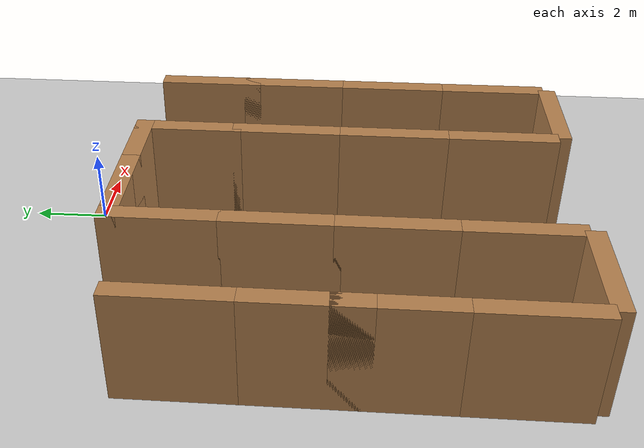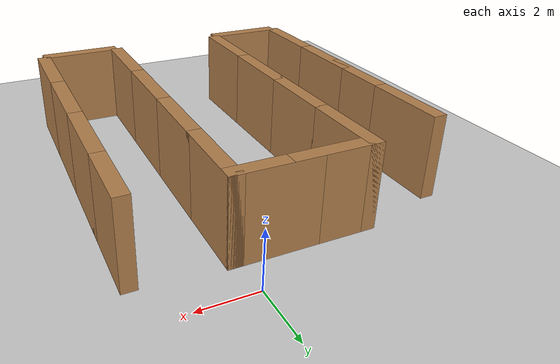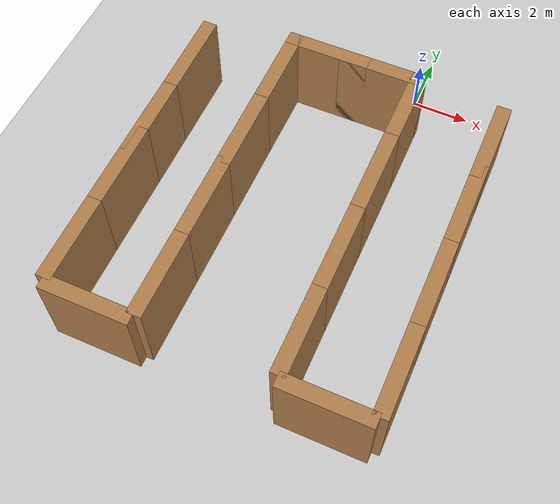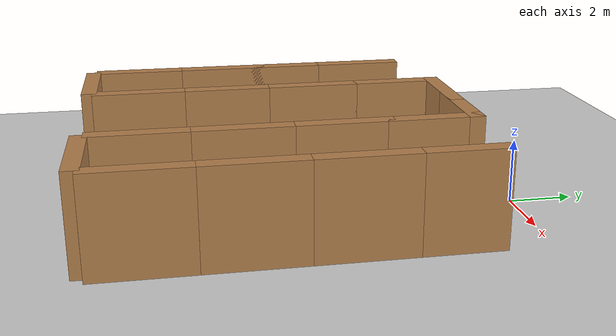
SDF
<sdf version="1.10">
 <world name="h_map_world_very_large">
  <model name="ground_plane">
   <static>true</static>
   <link name="link">
    <collision name="collision">
     <geometry><plane><normal>0 0 1</normal><size>100 100</size></plane></geometry>
     <surface><friction><ode><mu>50</mu></ode></friction></surface>
    </collision>
    <visual name="visual">
     <geometry><plane><normal>0 0 1</normal><size>100 100</size></plane></geometry>
     <material>
      <ambient>0.800000012 0.800000012 0.800000012 1</ambient>
      <diffuse>0.800000012 0.800000012 0.800000012 1</diffuse>
      <specular>0.800000012 0.800000012 0.800000012 1</specular>
     </material>
    </visual>
    <inertial>
     <mass>1</mass>
     <inertia><ixx>1</ixx><ixy>0</ixy><ixz>0</ixz><iyy>1</iyy><iyz>0</iyz><izz>1</izz></inertia>
    </inertial>
   </link>
  </model>
  <model name="left_west_-3">
   <static>true</static>
   <link name="chassis">
    <pose>0 0 1.5 0 0 0</pose>
    <collision name="collision"><geometry><box><size>3 0.5 3</size></box></geometry></collision>
    <visual name="visual">
     <geometry>
      <mesh><uri>model://brick_box_3x1x3/meshes/simple_box.dae</uri><scale>3 0.5 3</scale></mesh>
     </geometry>
     <material>
      <diffuse>1 1 1 1</diffuse>
      <script><uri>file://media/materials/scripts/gazebo.material</uri><name>Gazebo/Wood</name></script>
      <pbr><metal><albedo_map>model://brick_box_3x1x3/materials/textures/simple_box.png</albedo_map></metal></pbr>
     </material>
    </visual>
   </link>
   <pose>-7.2500 -11.4000 0 0 0 -1.5707963268</pose>
  </model>
  <model name="left_west_-2">
   <static>true</static>
   <link name="chassis">
    <pose>0 0 1.5 0 0 0</pose>
    <collision name="collision"><geometry><box><size>3 0.5 3</size></box></geometry></collision>
    <visual name="visual">
     <geometry>
      <mesh><uri>model://brick_box_3x1x3/meshes/simple_box.dae</uri><scale>3 0.5 3</scale></mesh>
     </geometry>
     <material>
      <diffuse>1 1 1 1</diffuse>
      <script><uri>file://media/materials/scripts/gazebo.material</uri><name>Gazebo/Wood</name></script>
      <pbr><metal><albedo_map>model://brick_box_3x1x3/materials/textures/simple_box.png</albedo_map></metal></pbr>
     </material>
    </visual>
   </link>
   <pose>-7.2500 -8.4000 0 0 0 -1.5707963268</pose>
  </model>
  <model name="left_west_-1">
   <static>true</static>
   <link name="chassis">
    <pose>0 0 1.5 0 0 0</pose>
    <collision name="collision"><geometry><box><size>3 0.5 3</size></box></geometry></collision>
    <visual name="visual">
     <geometry>
      <mesh><uri>model://brick_box_3x1x3/meshes/simple_box.dae</uri><scale>3 0.5 3</scale></mesh>
     </geometry>
     <material>
      <diffuse>1 1 1 1</diffuse>
      <script><uri>file://media/materials/scripts/gazebo.material</uri><name>Gazebo/Wood</name></script>
      <pbr><metal><albedo_map>model://brick_box_3x1x3/materials/textures/simple_box.png</albedo_map></metal></pbr>
     </material>
    </visual>
   </link>
   <pose>-7.2500 -6.4000 0 0 0 -1.5707963268</pose>
  </model>
  <model name="left_west_0">
   <static>true</static>
   <link name="chassis">
    <pose>0 0 1.5 0 0 0</pose>
    <collision name="collision"><geometry><box><size>3 0.5 3</size></box></geometry></collision>
    <visual name="visual">
     <geometry>
      <mesh><uri>model://brick_box_3x1x3/meshes/simple_box.dae</uri><scale>3 0.5 3</scale></mesh>
     </geometry>
     <material>
      <diffuse>1 1 1 1</diffuse>
      <script><uri>file://media/materials/scripts/gazebo.material</uri><name>Gazebo/Wood</name></script>
      <pbr><metal><albedo_map>model://brick_box_3x1x3/materials/textures/simple_box.png</albedo_map></metal></pbr>
     </material>
    </visual>
   </link>
   <pose>-7.2500 -3.4000 0 0 0 -1.5707963268</pose>
  </model>
  <model name="left_south_0">
   <static>true</static>
   <link name="chassis">
    <pose>0 0 1.5 0 0 0</pose>
    <collision name="collision"><geometry><box><size>3 0.5 3</size></box></geometry></collision>
    <visual name="visual">
     <geometry>
      <mesh><uri>model://brick_box_3x1x3/meshes/simple_box.dae</uri><scale>3 0.5 3</scale></mesh>
     </geometry>
     <material>
      <diffuse>1 1 1 1</diffuse>
      <script><uri>file://media/materials/scripts/gazebo.material</uri><name>Gazebo/Wood</name></script>
      <pbr><metal><albedo_map>model://brick_box_3x1x3/materials/textures/simple_box.png</albedo_map></metal></pbr>
     </material>
    </visual>
   </link>
   <pose>-5.7500 -13.00 0 0 0 0.0000000000</pose>
  </model>
  <model name="right_south_0">
   <static>true</static>
   <link name="chassis">
    <pose>0 0 1.5 0 0 0</pose>
    <collision name="collision"><geometry><box><size>3 0.5 3</size></box></geometry></collision>
    <visual name="visual">
     <geometry>
      <mesh><uri>model://brick_box_3x1x3/meshes/simple_box.dae</uri><scale>3 0.5 3</scale></mesh>
     </geometry>
     <material>
      <diffuse>1 1 1 1</diffuse>
      <script><uri>file://media/materials/scripts/gazebo.material</uri><name>Gazebo/Wood</name></script>
      <pbr><metal><albedo_map>model://brick_box_3x1x3/materials/textures/simple_box.png</albedo_map></metal></pbr>
     </material>
    </visual>
   </link>
   <pose>1.7500 -13.000 0 0 0 0.0000000000</pose>
  </model>
  <model name="right_east_-2">
   <static>true</static>
   <link name="chassis">
    <pose>0 0 1.5 0 0 0</pose>
    <collision name="collision"><geometry><box><size>3 0.5 3</size></box></geometry></collision>
    <visual name="visual">
     <geometry>
      <mesh><uri>model://brick_box_3x1x3/meshes/simple_box.dae</uri><scale>3 0.5 3</scale></mesh>
     </geometry>
     <material>
      <diffuse>1 1 1 1</diffuse>
      <script><uri>file://media/materials/scripts/gazebo.material</uri><name>Gazebo/Wood</name></script>
      <pbr><metal><albedo_map>model://brick_box_3x1x3/materials/textures/simple_box.png</albedo_map></metal></pbr>
     </material>
    </visual>
   </link>
   <pose>3.2500 -11.4000 0 0 0 -1.5707963268</pose>
  </model>
  <model name="right_east_-1">
   <static>true</static>
   <link name="chassis">
    <pose>0 0 1.5 0 0 0</pose>
    <collision name="collision"><geometry><box><size>3 0.5 3</size></box></geometry></collision>
    <visual name="visual">
     <geometry>
      <mesh><uri>model://brick_box_3x1x3/meshes/simple_box.dae</uri><scale>3 0.5 3</scale></mesh>
     </geometry>
     <material>
      <diffuse>1 1 1 1</diffuse>
      <script><uri>file://media/materials/scripts/gazebo.material</uri><name>Gazebo/Wood</name></script>
      <pbr><metal><albedo_map>model://brick_box_3x1x3/materials/textures/simple_box.png</albedo_map></metal></pbr>
     </material>
    </visual>
   </link>
   <pose>3.2500 -8.4000 0 0 0 -1.5707963268</pose>
  </model>
  <model name="right_east_0">
   <static>true</static>
   <link name="chassis">
    <pose>0 0 1.5 0 0 0</pose>
    <collision name="collision"><geometry><box><size>3 0.5 3</size></box></geometry></collision>
    <visual name="visual">
     <geometry>
      <mesh><uri>model://brick_box_3x1x3/meshes/simple_box.dae</uri><scale>3 0.5 3</scale></mesh>
     </geometry>
     <material>
      <diffuse>1 1 1 1</diffuse>
      <script><uri>file://media/materials/scripts/gazebo.material</uri><name>Gazebo/Wood</name></script>
      <pbr><metal><albedo_map>model://brick_box_3x1x3/materials/textures/simple_box.png</albedo_map></metal></pbr>
     </material>
    </visual>
   </link>
   <pose>3.2500 -5.4000 0 0 0 -1.5707963268</pose>
  </model>
  <model name="right_east_3">
   <static>true</static>
   <link name="chassis">
    <pose>0 0 1.5 0 0 0</pose>
    <collision name="collision"><geometry><box><size>3 0.5 3</size></box></geometry></collision>
    <visual name="visual">
     <geometry>
      <mesh><uri>model://brick_box_3x1x3/meshes/simple_box.dae</uri><scale>3 0.5 3</scale></mesh>
     </geometry>
     <material>
      <diffuse>1 1 1 1</diffuse>
      <script><uri>file://media/materials/scripts/gazebo.material</uri><name>Gazebo/Wood</name></script>
      <pbr><metal><albedo_map>model://brick_box_3x1x3/materials/textures/simple_box.png</albedo_map></metal></pbr>
     </material>
    </visual>
   </link>
   <pose>3.2500 -2.9000 0 0 0 -1.5707963268</pose>
  </model>
  <model name="left_east_lower_3">
   <static>true</static>
   <link name="chassis">
    <pose>0 0 1.5 0 0 0</pose>
    <collision name="collision"><geometry><box><size>3 0.5 3</size></box></geometry></collision>
    <visual name="visual">
     <geometry>
      <mesh><uri>model://brick_box_3x1x3/meshes/simple_box.dae</uri><scale>3 0.5 3</scale></mesh>
     </geometry>
     <material>
      <diffuse>1 1 1 1</diffuse>
      <script><uri>file://media/materials/scripts/gazebo.material</uri><name>Gazebo/Wood</name></script>
      <pbr><metal><albedo_map>model://brick_box_3x1x3/materials/textures/simple_box.png</albedo_map></metal></pbr>
     </material>
    </visual>
   </link>
   <pose>-4.2500 -11.4000 0 0 0 -1.5707963268</pose>
  </model>
  <model name="left_east_lower_2">
   <static>true</static>
   <link name="chassis">
    <pose>0 0 1.5 0 0 0</pose>
    <collision name="collision"><geometry><box><size>3 0.5 3</size></box></geometry></collision>
    <visual name="visual">
     <geometry>
      <mesh><uri>model://brick_box_3x1x3/meshes/simple_box.dae</uri><scale>3 0.5 3</scale></mesh>
     </geometry>
     <material>
      <diffuse>1 1 1 1</diffuse>
      <script><uri>file://media/materials/scripts/gazebo.material</uri><name>Gazebo/Wood</name></script>
      <pbr><metal><albedo_map>model://brick_box_3x1x3/materials/textures/simple_box.png</albedo_map></metal></pbr>
     </material>
    </visual>
   </link>
   <pose>-4.2500 -8.4000 0 0 0 -1.5707963268</pose>
  </model>
  <model name="left_east_lower_0">
   <static>true</static>
   <link name="chassis">
    <pose>0 0 1.5 0 0 0</pose>
    <collision name="collision"><geometry><box><size>3 0.5 3</size></box></geometry></collision>
    <visual name="visual">
     <geometry>
      <mesh><uri>model://brick_box_3x1x3/meshes/simple_box.dae</uri><scale>3 0.5 3</scale></mesh>
     </geometry>
     <material>
      <diffuse>1 1 1 1</diffuse>
      <script><uri>file://media/materials/scripts/gazebo.material</uri><name>Gazebo/Wood</name></script>
      <pbr><metal><albedo_map>model://brick_box_3x1x3/materials/textures/simple_box.png</albedo_map></metal></pbr>
     </material>
    </visual>
   </link>
   <pose>-4.2500 -5.6000 0 0 0 -1.5707963268</pose>
  </model>
  <model name="left_east_lower_1">
   <static>true</static>
   <link name="chassis">
    <pose>0 0 1.5 0 0 0</pose>
    <collision name="collision"><geometry><box><size>3 0.5 3</size></box></geometry></collision>
    <visual name="visual">
     <geometry>
      <mesh><uri>model://brick_box_3x1x3/meshes/simple_box.dae</uri><scale>3 0.5 3</scale></mesh>
     </geometry>
     <material>
      <diffuse>1 1 1 1</diffuse>
      <script><uri>file://media/materials/scripts/gazebo.material</uri><name>Gazebo/Wood</name></script>
      <pbr><metal><albedo_map>model://brick_box_3x1x3/materials/textures/simple_box.png</albedo_map></metal></pbr>
     </material>
    </visual>
   </link>
   <pose>-4.2500 -2.6500 0 0 0 -1.5707963268</pose>
  </model>
  <model name="bridge_south_0">
   <static>true</static>
   <link name="chassis">
    <pose>0 0 1.5 0 0 0</pose>
    <collision name="collision"><geometry><box><size>3 0.5 3</size></box></geometry></collision>
    <visual name="visual">
     <geometry>
      <mesh><uri>model://brick_box_3x1x3/meshes/simple_box.dae</uri><scale>3 0.5 3</scale></mesh>
     </geometry>
     <material>
      <diffuse>1 1 1 1</diffuse>
      <script><uri>file://media/materials/scripts/gazebo.material</uri><name>Gazebo/Wood</name></script>
      <pbr><metal><albedo_map>model://brick_box_3x1x3/materials/textures/simple_box.png</albedo_map></metal></pbr>
     </material>
    </visual>
   </link>
   <pose>-3.0000 -1.4000 0 0 0 0.0000000000</pose>
  </model>
  <model name="bridge_south_1">
   <static>true</static>
   <link name="chassis">
    <pose>0 0 1.5 0 0 0</pose>
    <collision name="collision"><geometry><box><size>3 0.5 3</size></box></geometry></collision>
    <visual name="visual">
     <geometry>
      <mesh><uri>model://brick_box_3x1x3/meshes/simple_box.dae</uri><scale>3 0.5 3</scale></mesh>
     </geometry>
     <material>
      <diffuse>1 1 1 1</diffuse>
      <script><uri>file://media/materials/scripts/gazebo.material</uri><name>Gazebo/Wood</name></script>
      <pbr><metal><albedo_map>model://brick_box_3x1x3/materials/textures/simple_box.png</albedo_map></metal></pbr>
     </material>
    </visual>
   </link>
   <pose>-1.0000 -1.4000 0 0 0 0.0000000000</pose>
  </model>
  <model name="right_west_lower_-2">
   <static>true</static>
   <link name="chassis">
    <pose>0 0 1.5 0 0 0</pose>
    <collision name="collision"><geometry><box><size>3 0.5 3</size></box></geometry></collision>
    <visual name="visual">
     <geometry>
      <mesh><uri>model://brick_box_3x1x3/meshes/simple_box.dae</uri><scale>3 0.5 3</scale></mesh>
     </geometry>
     <material>
      <diffuse>1 1 1 1</diffuse>
      <script><uri>file://media/materials/scripts/gazebo.material</uri><name>Gazebo/Wood</name></script>
      <pbr><metal><albedo_map>model://brick_box_3x1x3/materials/textures/simple_box.png</albedo_map></metal></pbr>
     </material>
    </visual>
   </link>
   <pose>0.2500 -11.4000 0 0 0 -1.5707963268</pose>
  </model>
  <model name="right_west_lower_-1">
   <static>true</static>
   <link name="chassis">
    <pose>0 0 1.5 0 0 0</pose>
    <collision name="collision"><geometry><box><size>3 0.5 3</size></box></geometry></collision>
    <visual name="visual">
     <geometry>
      <mesh><uri>model://brick_box_3x1x3/meshes/simple_box.dae</uri><scale>3 0.5 3</scale></mesh>
     </geometry>
     <material>
      <diffuse>1 1 1 1</diffuse>
      <script><uri>file://media/materials/scripts/gazebo.material</uri><name>Gazebo/Wood</name></script>
      <pbr><metal><albedo_map>model://brick_box_3x1x3/materials/textures/simple_box.png</albedo_map></metal></pbr>
     </material>
    </visual>
   </link>
   <pose>0.2500 -8.4000 0 0 0 -1.5707963268</pose>
  </model>
  <model name="right_west_lower_0">
   <static>true</static>
   <link name="chassis">
    <pose>0 0 1.5 0 0 0</pose>
    <collision name="collision"><geometry><box><size>3 0.5 3</size></box></geometry></collision>
    <visual name="visual">
     <geometry>
      <mesh><uri>model://brick_box_3x1x3/meshes/simple_box.dae</uri><scale>3 0.5 3</scale></mesh>
     </geometry>
     <material>
      <diffuse>1 1 1 1</diffuse>
      <script><uri>file://media/materials/scripts/gazebo.material</uri><name>Gazebo/Wood</name></script>
      <pbr><metal><albedo_map>model://brick_box_3x1x3/materials/textures/simple_box.png</albedo_map></metal></pbr>
     </material>
    </visual>
   </link>
   <pose>0.2500 -5.4000 0 0 0 -1.5707963268</pose>
  </model>
  <model name="right_west_lower_1">
   <static>true</static>
   <link name="chassis">
    <pose>0 0 1.5 0 0 0</pose>
    <collision name="collision"><geometry><box><size>3 0.5 3</size></box></geometry></collision>
    <visual name="visual">
     <geometry>
      <mesh><uri>model://brick_box_3x1x3/meshes/simple_box.dae</uri><scale>3 0.5 3</scale></mesh>
     </geometry>
     <material>
      <diffuse>1 1 1 1</diffuse>
      <script><uri>file://media/materials/scripts/gazebo.material</uri><name>Gazebo/Wood</name></script>
      <pbr><metal><albedo_map>model://brick_box_3x1x3/materials/textures/simple_box.png</albedo_map></metal></pbr>
     </material>
    </visual>
   </link>
   <pose>0.2500 -2.6500 0 0 0 -1.5707963268</pose>
  </model>
  <model name="fire_hydrant_1">
   <static>true</static>
   <link name="link">
    <collision name="collision">
     <geometry><mesh><uri>model://fire_hydrant/meshes/fire_hydrant.dae</uri></mesh></geometry>
    </collision>
    <visual name="visual">
     <geometry><mesh><uri>model://fire_hydrant/meshes/fire_hydrant.dae</uri></mesh></geometry>
    </visual>
    <inertial>
     <mass>1</mass>
     <inertia><ixx>1</ixx><ixy>0</ixy><ixz>0</ixz><iyy>1</iyy><iyz>0</iyz><izz>1</izz></inertia>
    </inertial>
   </link>
   <pose>-4.8000 -12.2000 0 0 0 0</pose>
  </model>
  <model name="fire_hydrant_2">
   <static>true</static>
   <link name="link">
    <collision name="collision">
     <geometry><mesh><uri>model://fire_hydrant/meshes/fire_hydrant.dae</uri></mesh></geometry>
    </collision>
    <visual name="visual">
     <geometry><mesh><uri>model://fire_hydrant/meshes/fire_hydrant.dae</uri></mesh></geometry>
    </visual>
    <inertial>
     <mass>1</mass>
     <inertia><ixx>1</ixx><ixy>0</ixy><ixz>0</ixz><iyy>1</iyy><iyz>0</iyz><izz>1</izz></inertia>
    </inertial>
   </link>
   <pose>-6.8000 -12.2000 0 0 0 0</pose>
  </model>
 </world>
</sdf>
